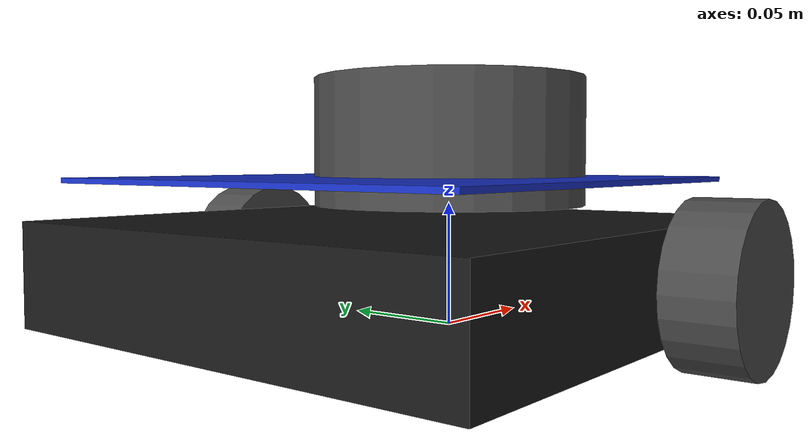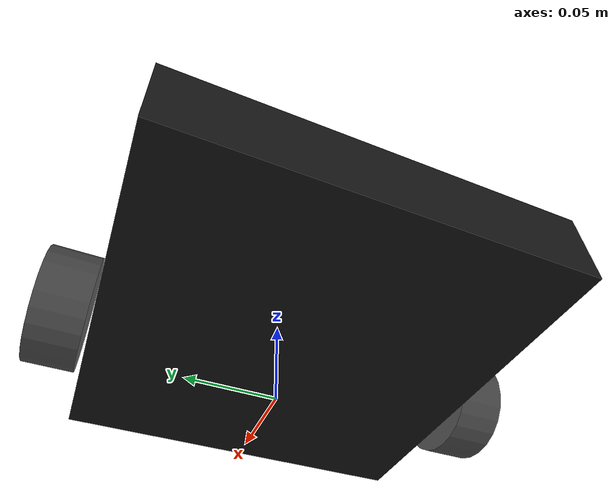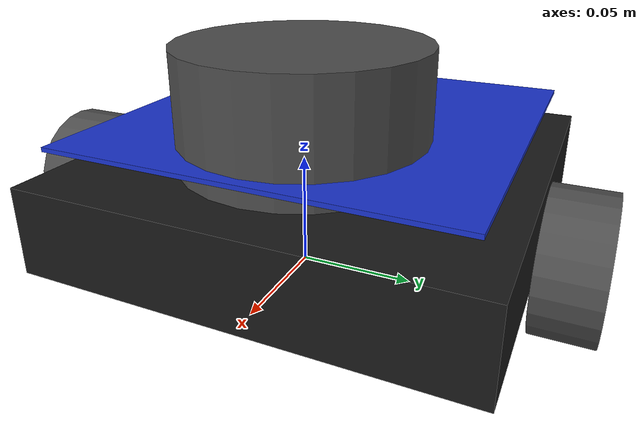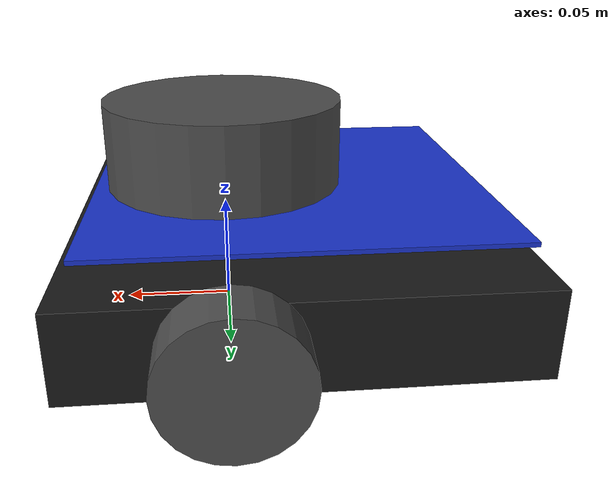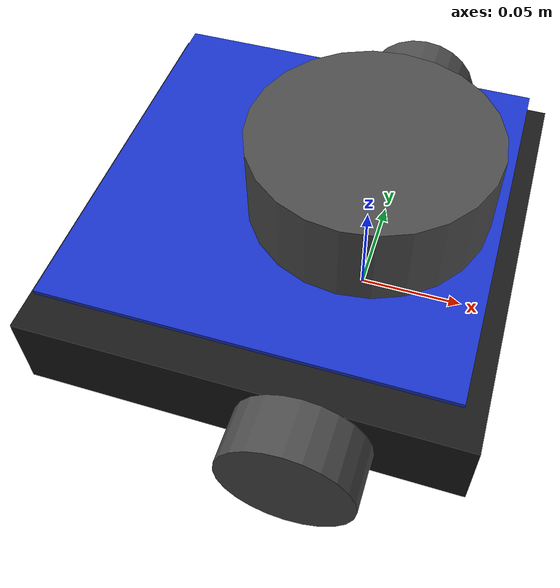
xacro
<?xml version="1.0"?>
<robot name="turtlebro" xmlns:xacro="https://www.ros.org/wiki/xacro" >
  <material name="extra_dark">
    <color rgba="0.1 0.1 0.1 1.0"/>
  </material>
  <material name="dark">
    <color rgba="0.3 0.3 0.3 1.0"/>
  </material>
  <material name="light_black">
    <color rgba="0.4 0.4 0.4 1.0"/>
  </material>
  <material name="blue">
    <color rgba="0.1 0.2 0.8 1.0"/>
  </material>
  <material name="green">
    <color rgba="0.0 0.8 0.0 1.0"/>
  </material>
  <material name="white">
    <color rgba="0.9 0.9 0.9 1.0"/>
  </material>

  <joint name="base_joint" type="fixed">
    <parent link="base_footprint"/>
    <child link="base_link"/>
    <origin xyz="0.0 0.0 0.025" rpy="0 0 0"/>
  </joint>

  <joint name="scan_joint" type="fixed">
    <parent link="base_link"/>
    <child link="base_scan"/>
    <origin xyz="0.0 0 0.08" rpy="0 0 3.1415"/>
  </joint>

  <joint name="imu_joint" type="fixed">
    <parent link="base_link"/>
    <child link="imu_link"/>
    <origin xyz="0.0 0 0.035" rpy="0 0 0"/>
  </joint>

  <joint name="wheel_left_joint" type="fixed">
    <parent link="base_link"/>
    <child link="wheel_left_link"/>
    <origin xyz="0 0.115 0" rpy="0 0 0"/>
    <axis xyz="0 0 1"/>
  </joint>

  <joint name="wheel_right_joint" type="fixed">
    <parent link="base_link"/>
    <child link="wheel_right_link"/>
    <origin xyz="0 -0.115 0" rpy="0 0 0"/>
    <axis xyz="0 0 1"/>
  </joint>

  <link name="base_footprint"/>
  <link name="imu_link">
    <visual>
      <origin rpy="0 0 0" xyz="-0.03 0 0.0"/>
      <geometry>
        <box size="0.18 0.18 0.002"/>
      </geometry>
      <material name="blue"/>
    </visual>
  </link>

  <link name="base_link">
    <visual>
      <origin rpy="0 0 0" xyz="-0.03 0 0.0"/>
      <geometry>
        <box size="0.20 0.20 0.04"/>
      </geometry>
      <material name="extra_dark"/>
    </visual>
  </link>

  <link name="base_scan">
    <visual>
      <origin xyz="0 0 -0.03" rpy="0 0 0"/>
      <geometry>
        <cylinder length="0.0515" radius="0.055"/>
      </geometry>
      <material name="dark"/>
    </visual>
  </link>

  <link name="wheel_left_link">
    <visual>
      <origin xyz="0 0 0" rpy="1.57 0 0"/>
      <geometry>
        <cylinder length="0.025" radius="0.03"/>
      </geometry>
      <material name="dark"/>
    </visual>
  </link>

  <link name="wheel_right_link">
    <visual>
      <origin xyz="0 0 0" rpy="1.57 0 0"/>
      <geometry>
        <cylinder length="0.025" radius="0.03"/>
      </geometry>
      <material name="dark"/>
    </visual>
  </link>

</robot>
